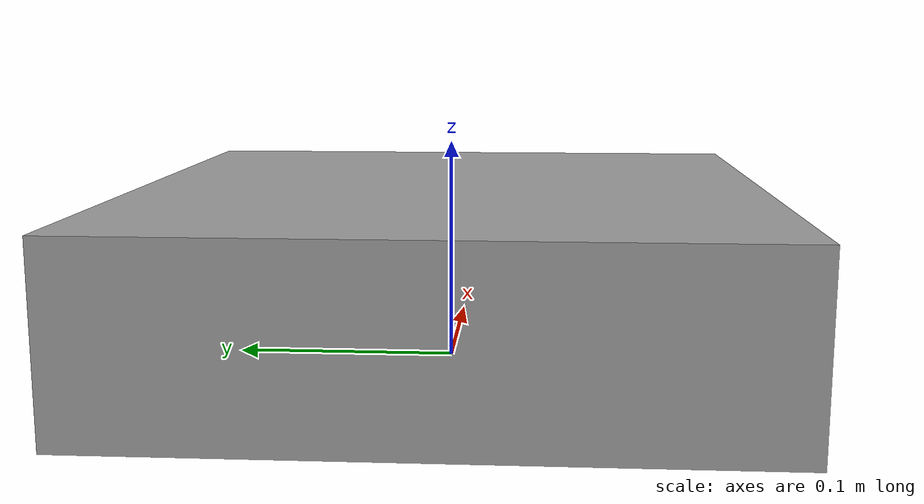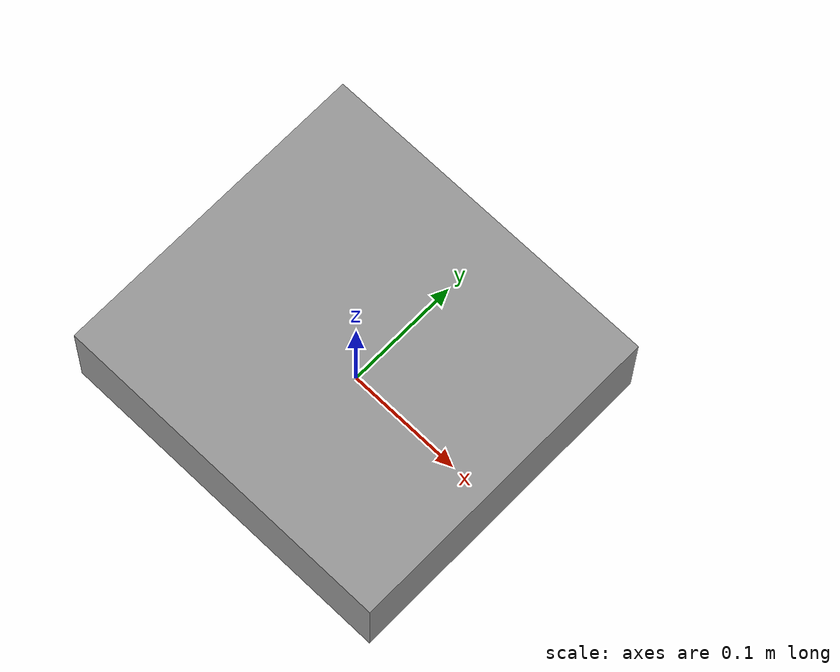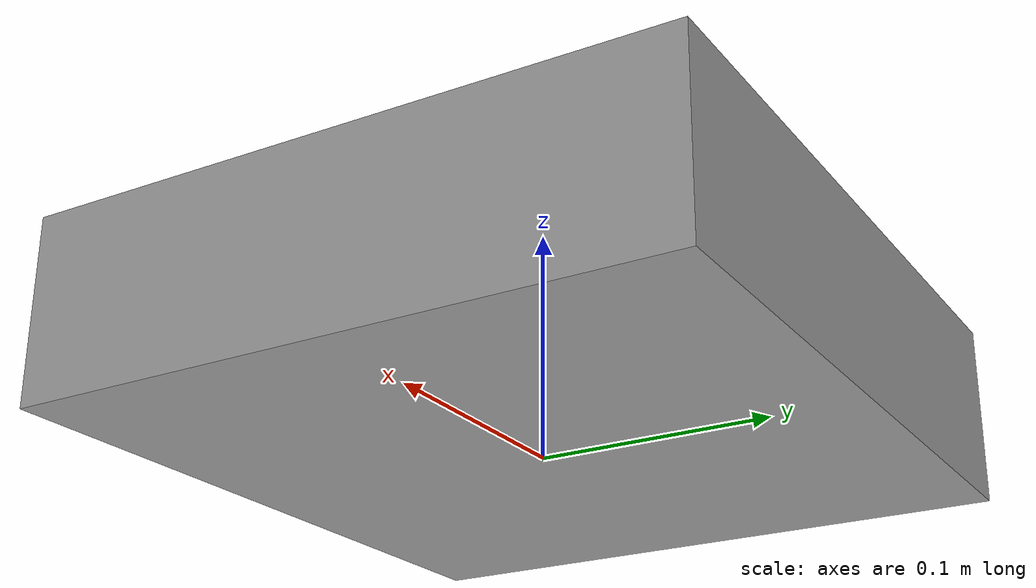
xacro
<?xml version="1.0"?>
<robot name="vacuum_robot" xmlns:xacro="http://www.ros.org/wiki/xacro">

  <!-- Parámetros básicos -->
  <xacro:property name="base_length" value="0.30"/>
  <xacro:property name="base_width"  value="0.28"/>
  <xacro:property name="base_height" value="0.08"/>

  <xacro:property name="wheel_radius" value="0.035"/>
  <xacro:property name="wheel_width"  value="0.02"/>
  <xacro:property name="wheel_sep"    value="0.22"/>

  <xacro:property name="caster_radius" value="0.015"/>

  <!-- Materiales simples -->
  <material name="gray"><color rgba="0.6 0.6 0.6 1"/></material>
  <material name="black"><color rgba="0.1 0.1 0.1 1"/></material>

  <!-- BASE -->
  <link name="base_link">
    <visual>
      <origin xyz="0 0 ${base_height/2}" rpy="0 0 0"/>
      <geometry>
        <box size="${base_length} ${base_width} ${base_height}"/>
      </geometry>
      <material name="gray"/>
    </visual>
    <collision>
      <origin xyz="0 0 ${base_height/2}" rpy="0 0 0"/>
      <geometry>
        <box size="${base_length} ${base_width} ${base_height}"/>
      </geometry>
    </collision>
    <inertial>
      <origin xyz="0 0 ${base_height/2}" rpy="0 0 0"/>
      <mass value="5.0"/>
      <inertia ixx="0.05" ixy="0.0" ixz="0.0"
               iyy="0.08" iyz="0.0"
               izz="0.10"/>
    </inertial>
  </link>

  <!-- RUEDA IZQUIERDA -->
  <link name="left_wheel_link">
    <visual>
      <origin xyz="0 0 0" rpy="1.5708 0 0"/>
      <geometry>
        <cylinder radius="${wheel_radius}" length="${wheel_width}"/>
      </geometry>
      <material name="black"/>
    </visual>
    <collision>
      <origin xyz="0 0 0" rpy="1.5708 0 0"/>
      <geometry>
        <cylinder radius="${wheel_radius}" length="${wheel_width}"/>
      </geometry>
    </collision>
    <inertial>
      <mass value="0.2"/>
      <inertia ixx="0.0002" ixy="0" ixz="0"
               iyy="0.0002" iyz="0"
               izz="0.0002"/>
    </inertial>
  </link>

  <joint name="left_wheel_joint" type="continuous">
    <parent link="base_link"/>
    <child link="left_wheel_link"/>
    <origin xyz="0 ${wheel_sep/2} ${wheel_radius}" rpy="0 0 0"/>
    <axis xyz="0 1 0"/>
  </joint>

  <!-- RUEDA DERECHA -->
  <link name="right_wheel_link">
    <visual>
      <origin xyz="0 0 0" rpy="1.5708 0 0"/>
      <geometry>
        <cylinder radius="${wheel_radius}" length="${wheel_width}"/>
      </geometry>
      <material name="black"/>
    </visual>
    <collision>
      <origin xyz="0 0 0" rpy="1.5708 0 0"/>
      <geometry>
        <cylinder radius="${wheel_radius}" length="${wheel_width}"/>
      </geometry>
    </collision>
    <inertial>
      <mass value="0.2"/>
      <inertia ixx="0.0002" ixy="0" ixz="0"
               iyy="0.0002" iyz="0"
               izz="0.0002"/>
    </inertial>
  </link>

  <joint name="right_wheel_joint" type="continuous">
    <parent link="base_link"/>
    <child link="right_wheel_link"/>
    <origin xyz="0 ${-wheel_sep/2} ${wheel_radius}" rpy="0 0 0"/>
    <axis xyz="0 1 0"/>
  </joint>

  <!-- CASTER (rueda loca / esfera simple) -->
  <link name="caster_link">
    <visual>
      <origin xyz="0 0 0" rpy="0 0 0"/>
      <geometry>
        <sphere radius="${caster_radius}"/>
      </geometry>
      <material name="black"/>
    </visual>
    <collision>
      <origin xyz="0 0 0" rpy="0 0 0"/>
      <geometry>
        <sphere radius="${caster_radius}"/>
      </geometry>
    </collision>
    <inertial>
      <mass value="0.05"/>
      <inertia ixx="0.00001" ixy="0" ixz="0"
               iyy="0.00001" iyz="0"
               izz="0.00001"/>
    </inertial>
  </link>

  <joint name="caster_joint" type="fixed">
    <parent link="base_link"/>
    <child link="caster_link"/>
    <!-- caster al frente -->
    <origin xyz="${base_length/2 - 0.04} 0 ${caster_radius}" rpy="0 0 0"/>
  </joint>

</robot>
